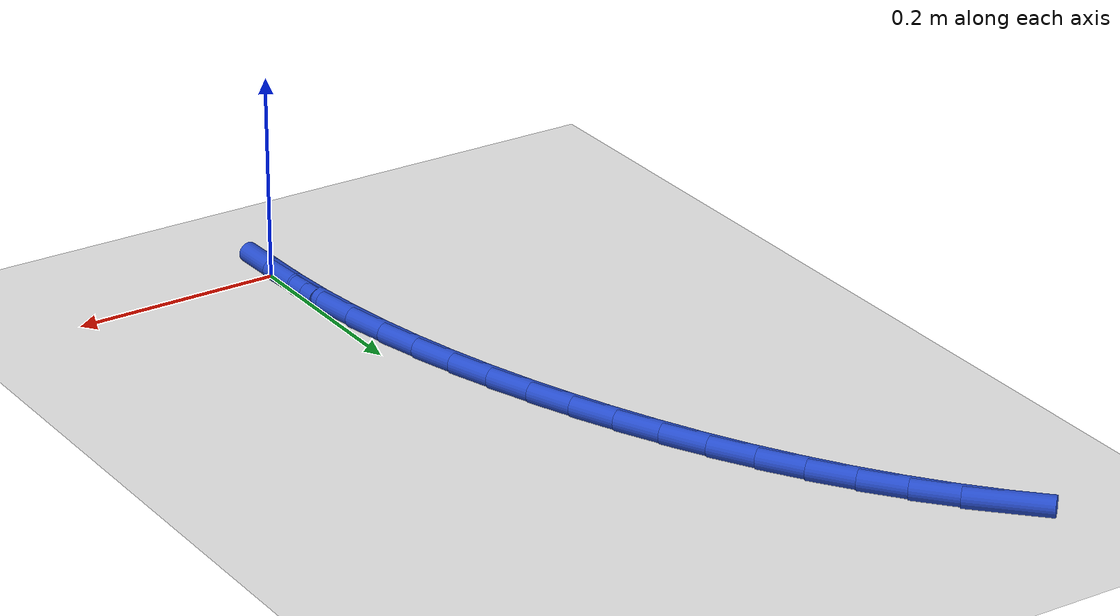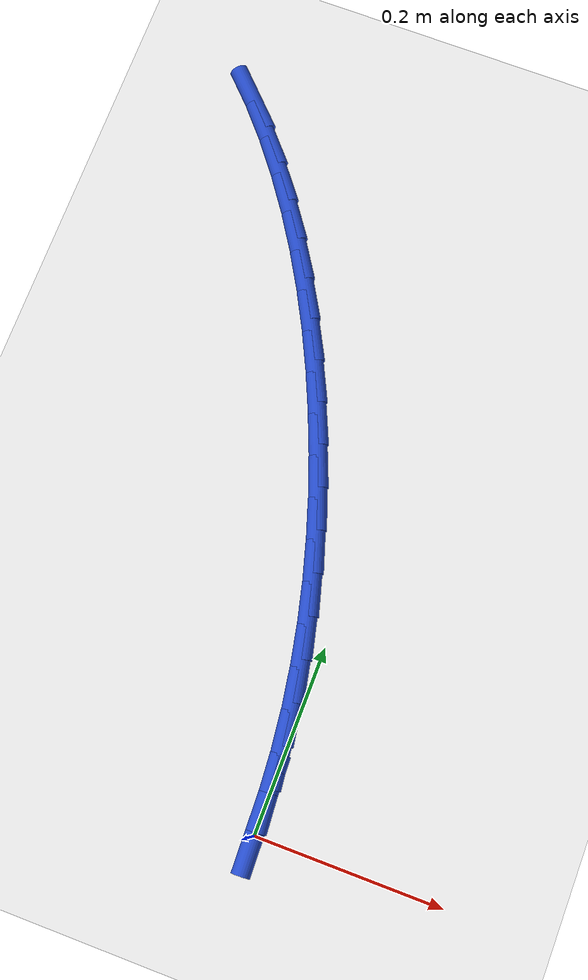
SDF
<sdf version="1.6">
 <world name="default">
  <model name="ground_plane">
   <static>1</static>
   <link name="link">
    <collision name="collision">
     <geometry><plane><normal>0 0 1</normal><size>100 100</size></plane></geometry>
     <surface><friction><ode><mu>100</mu><mu2>50</mu2></ode></friction></surface>
    </collision>
    <visual name="visual">
     <cast_shadows>0</cast_shadows>
     <geometry><plane><normal>0 0 1</normal><size>100 100</size></plane></geometry>
     <material>
      <script><uri>file://media/materials/scripts/gazebo.material</uri><name>Gazebo/WhiteGlow</name></script>
     </material>
    </visual>
   </link>
  </model>
  <model name="line">
   <link name="link_1">
    <pose>-0.0014334239305435637 0.04407599775907522 0.01 0 1.57 -1.4936702109466664</pose>
    <collision name="collision">
     <geometry><cylinder><radius>0.01</radius><length>0.08</length></cylinder></geometry>
    </collision>
    <visual name="visual">
     <material>
      <script><name>Gazebo/Blue</name><uri>file://media/materials/scripts/gazebo.material</uri></script>
     </material>
     <geometry><cylinder><radius>0.01</radius><length>0.08</length></cylinder></geometry>
    </visual>
   </link>
   <link name="link_2">
    <pose>-0.004822178645681405 0.08792667980544557 0.01 0 1.57 -1.4501386980999926</pose>
    <collision name="collision">
     <geometry><cylinder><radius>0.01</radius><length>0.08</length></cylinder></geometry>
    </collision>
    <visual name="visual">
     <material>
      <script><name>Gazebo/Blue</name><uri>file://media/materials/scripts/gazebo.material</uri></script>
     </material>
     <geometry><cylinder><radius>0.01</radius><length>0.08</length></cylinder></geometry>
    </visual>
   </link>
   <link name="link_3">
    <pose>-0.010113488527586544 0.1315675797254038 0.01 0 1.57 -1.4078883765657173</pose>
    <collision name="collision">
     <geometry><cylinder><radius>0.01</radius><length>0.08</length></cylinder></geometry>
    </collision>
    <visual name="visual">
     <material>
      <script><name>Gazebo/Blue</name><uri>file://media/materials/scripts/gazebo.material</uri></script>
     </material>
     <geometry><cylinder><radius>0.01</radius><length>0.08</length></cylinder></geometry>
    </visual>
   </link>
   <link name="link_4">
    <pose>-0.01725457795843197 0.1750142311052427 0.01 0 1.57 -1.36708628930092</pose>
    <collision name="collision">
     <geometry><cylinder><radius>0.01</radius><length>0.08</length></cylinder></geometry>
    </collision>
    <visual name="visual">
     <material>
      <script><name>Gazebo/Blue</name><uri>file://media/materials/scripts/gazebo.material</uri></script>
     </material>
     <geometry><cylinder><radius>0.01</radius><length>0.08</length></cylinder></geometry>
    </visual>
   </link>
   <link name="link_5">
    <pose>-0.02619267132039068 0.21828216753125507 0.01 0 1.57 -1.3278682648668352</pose>
    <collision name="collision">
     <geometry><cylinder><radius>0.01</radius><length>0.08</length></cylinder></geometry>
    </collision>
    <visual name="visual">
     <material>
      <script><name>Gazebo/Blue</name><uri>file://media/materials/scripts/gazebo.material</uri></script>
     </material>
     <geometry><cylinder><radius>0.01</radius><length>0.08</length></cylinder></geometry>
    </visual>
   </link>
   <link name="link_6">
    <pose>-0.036874992995635694 0.26138692258973373 0.01 0 1.57 -1.2903390067754423</pose>
    <collision name="collision">
     <geometry><cylinder><radius>0.01</radius><length>0.08</length></cylinder></geometry>
    </collision>
    <visual name="visual">
     <material>
      <script><name>Gazebo/Blue</name><uri>file://media/materials/scripts/gazebo.material</uri></script>
     </material>
     <geometry><cylinder><radius>0.01</radius><length>0.08</length></cylinder></geometry>
    </visual>
   </link>
   <link name="link_7">
    <pose>-0.049248767366339964 0.3043440298669714 0.01 0 1.57 -1.2545734930620167</pose>
    <collision name="collision">
     <geometry><cylinder><radius>0.01</radius><length>0.08</length></cylinder></geometry>
    </collision>
    <visual name="visual">
     <material>
      <script><name>Gazebo/Blue</name><uri>file://media/materials/scripts/gazebo.material</uri></script>
     </material>
     <geometry><cylinder><radius>0.01</radius><length>0.08</length></cylinder></geometry>
    </visual>
   </link>
   <link name="link_8">
    <pose>-0.0632612188146765 0.34716902294926083 0.01 0 1.57 -1.220617000989838</pose>
    <collision name="collision">
     <geometry><cylinder><radius>0.01</radius><length>0.08</length></cylinder></geometry>
    </collision>
    <visual name="visual">
     <material>
      <script><name>Gazebo/Blue</name><uri>file://media/materials/scripts/gazebo.material</uri></script>
     </material>
     <geometry><cylinder><radius>0.01</radius><length>0.08</length></cylinder></geometry>
    </visual>
   </link>
   <link name="link_9">
    <pose>-0.07885961957642132 0.38987725323400174 0.01 0 1.57 -1.187687017059965</pose>
    <collision name="collision">
     <geometry><cylinder><radius>0.01</radius><length>0.08</length></cylinder></geometry>
    </collision>
    <visual name="visual">
     <material>
      <script><name>Gazebo/Blue</name><uri>file://media/materials/scripts/gazebo.material</uri></script>
     </material>
     <geometry><cylinder><radius>0.01</radius><length>0.08</length></cylinder></geometry>
    </visual>
   </link>
   <link name="link_10">
    <pose>-0.09600698006412178 0.43242415351632935 0.01 0 1.57 -1.1536730512228142</pose>
    <collision name="collision">
     <geometry><cylinder><radius>0.01</radius><length>0.08</length></cylinder></geometry>
    </collision>
    <visual name="visual">
     <material>
      <script><name>Gazebo/Blue</name><uri>file://media/materials/scripts/gazebo.material</uri></script>
     </material>
     <geometry><cylinder><radius>0.01</radius><length>0.08</length></cylinder></geometry>
    </visual>
   </link>
   <link name="link_11">
    <pose>-0.11470467641745499 0.47461909006932423 0.01 0 1.57 -1.1179699331308197</pose>
    <collision name="collision">
     <geometry><cylinder><radius>0.01</radius><length>0.08</length></cylinder></geometry>
    </collision>
    <visual name="visual">
     <material>
      <script><name>Gazebo/Blue</name><uri>file://media/materials/scripts/gazebo.material</uri></script>
     </material>
     <geometry><cylinder><radius>0.01</radius><length>0.08</length></cylinder></geometry>
    </visual>
   </link>
   <link name="link_12">
    <pose>-0.13495982042169669 0.5162495923375483 0.01 0 1.57 -1.080246169833982</pose>
    <collision name="collision">
     <geometry><cylinder><radius>0.01</radius><length>0.08</length></cylinder></geometry>
    </collision>
    <visual name="visual">
     <material>
      <script><name>Gazebo/Blue</name><uri>file://media/materials/scripts/gazebo.material</uri></script>
     </material>
     <geometry><cylinder><radius>0.01</radius><length>0.08</length></cylinder></geometry>
    </visual>
   </link>
   <link name="link_13">
    <pose>-0.15677952386212246 0.5571031897655633 0.01 0 1.57 -1.040156994830927</pose>
    <collision name="collision">
     <geometry><cylinder><radius>0.01</radius><length>0.08</length></cylinder></geometry>
    </collision>
    <visual name="visual">
     <material>
      <script><name>Gazebo/Blue</name><uri>file://media/materials/scripts/gazebo.material</uri></script>
     </material>
     <geometry><cylinder><radius>0.01</radius><length>0.08</length></cylinder></geometry>
    </visual>
   </link>
   <link name="link_14">
    <pose>-0.18017089852400817 0.5969674117979313 0.01 0 1.57 -0.9973429066233543</pose>
    <collision name="collision">
     <geometry><cylinder><radius>0.01</radius><length>0.08</length></cylinder></geometry>
    </collision>
    <visual name="visual">
     <material>
      <script><name>Gazebo/Blue</name><uri>file://media/materials/scripts/gazebo.material</uri></script>
     </material>
     <geometry><cylinder><radius>0.01</radius><length>0.08</length></cylinder></geometry>
    </visual>
   </link>
   <link name="link_15">
    <pose>-0.20514105619262946 0.6356297878792139 0.01 0 1.57 -0.9514309978935486</pose>
    <collision name="collision">
     <geometry><cylinder><radius>0.01</radius><length>0.08</length></cylinder></geometry>
    </collision>
    <visual name="visual">
     <material>
      <script><name>Gazebo/Blue</name><uri>file://media/materials/scripts/gazebo.material</uri></script>
     </material>
     <geometry><cylinder><radius>0.01</radius><length>0.08</length></cylinder></geometry>
    </visual>
   </link>
   <link name="link_16">
    <pose>-0.2316971086532621 0.672877847453973 0.01 0 1.57 -0.9020401060629332</pose>
    <collision name="collision">
     <geometry><cylinder><radius>0.01</radius><length>0.08</length></cylinder></geometry>
    </collision>
    <visual name="visual">
     <material>
      <script><name>Gazebo/Blue</name><uri>file://media/materials/scripts/gazebo.material</uri></script>
     </material>
     <geometry><cylinder><radius>0.01</radius><length>0.08</length></cylinder></geometry>
    </visual>
   </link>
   <link name="link_17">
    <pose>-0.25984616769118185 0.7084991199667707 0.01 0 1.57 -0.8487911784078503</pose>
    <collision name="collision">
     <geometry><cylinder><radius>0.01</radius><length>0.08</length></cylinder></geometry>
    </collision>
    <visual name="visual">
     <material>
      <script><name>Gazebo/Blue</name><uri>file://media/materials/scripts/gazebo.material</uri></script>
     </material>
     <geometry><cylinder><radius>0.01</radius><length>0.08</length></cylinder></geometry>
    </visual>
   </link>
   <link name="link_18">
    <pose>-0.2895953450916642 0.7422811348621686 0.01 0 1.57 -0.7913245287181514</pose>
    <collision name="collision">
     <geometry><cylinder><radius>0.01</radius><length>0.08</length></cylinder></geometry>
    </collision>
    <visual name="visual">
     <material>
      <script><name>Gazebo/Blue</name><uri>file://media/materials/scripts/gazebo.material</uri></script>
     </material>
     <geometry><cylinder><radius>0.01</radius><length>0.08</length></cylinder></geometry>
    </visual>
   </link>
   <link name="link_160">
    <pose>-1.5612511283791264e-17 4.163336342344337e-17 0.01 0 1.57 -1.5381218884309726</pose>
    <collision name="collision">
     <geometry><cylinder><radius>0.01</radius><length>0.08</length></cylinder></geometry>
    </collision>
    <visual name="visual">
     <material>
      <script><name>Gazebo/Blue</name><uri>file://media/materials/scripts/gazebo.material</uri></script>
     </material>
     <geometry><cylinder><radius>0.01</radius><length>0.08</length></cylinder></geometry>
    </visual>
   </link>
   <link name="link_161">
    <pose>-0.0014397797903277637 0.04404872576872562 0.01 0 1.57 -1.5381218884309729</pose>
    <collision name="collision">
     <geometry><cylinder><radius>0.01</radius><length>0.08</length></cylinder></geometry>
    </collision>
    <visual name="visual">
     <material>
      <script><name>Gazebo/Blue</name><uri>file://media/materials/scripts/gazebo.material</uri></script>
     </material>
     <geometry><cylinder><radius>0.01</radius><length>0.08</length></cylinder></geometry>
    </visual>
   </link>
  </model>
 </world>
</sdf>
